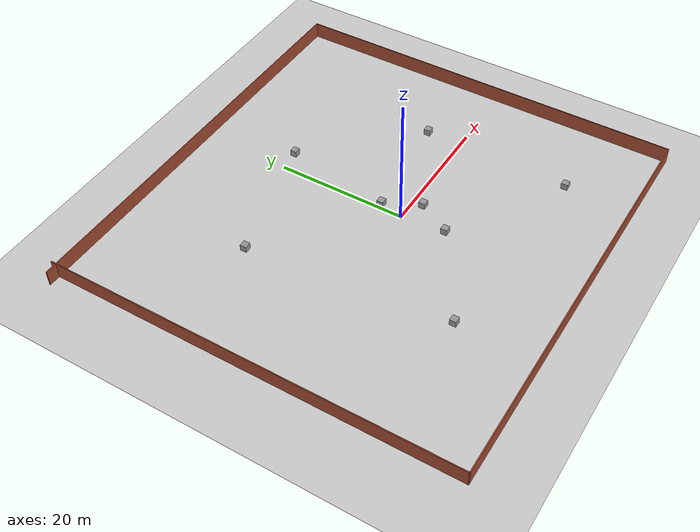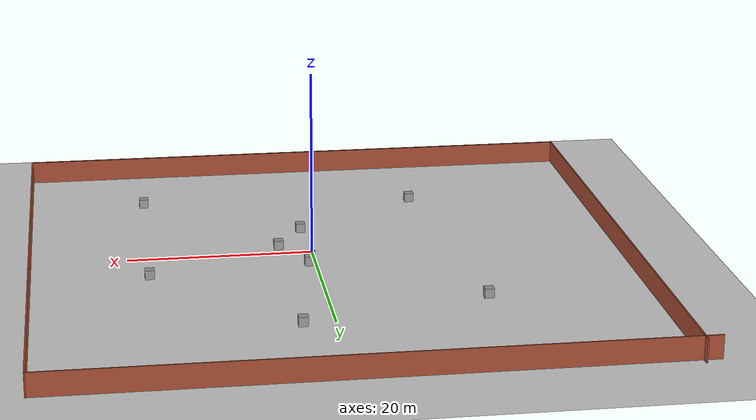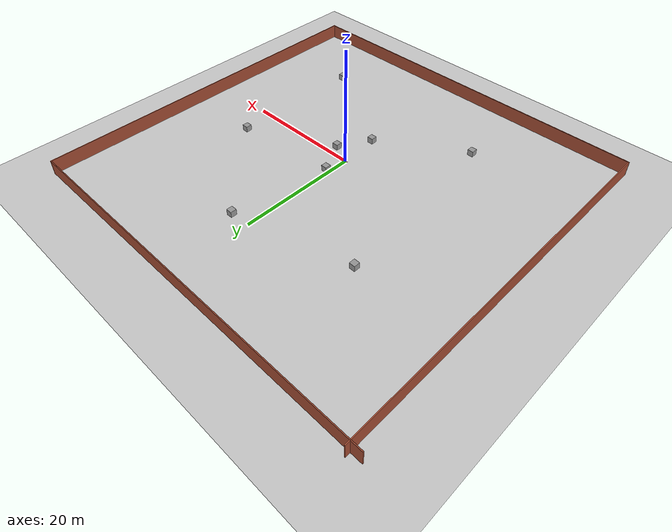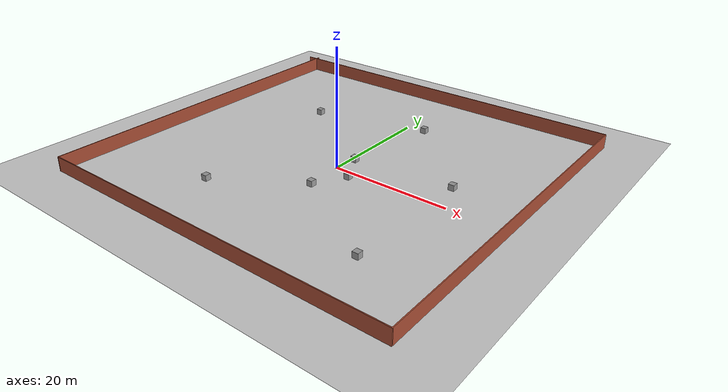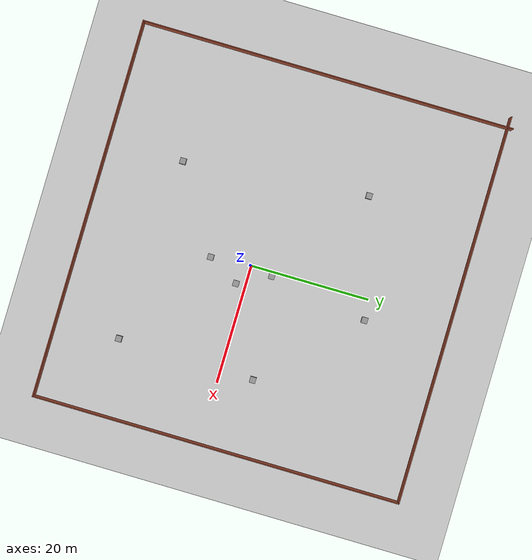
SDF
<sdf version="1.6">
 <world name="default">
  <light name="sun" type="directional">
   <pose>0 0 10 0 -0 0</pose>
   <diffuse>0.8 0.8 0.8 1</diffuse>
   <specular>0.1 0.1 0.1 1</specular>
   <attenuation>
    <range>1000</range>
    <constant>0.9</constant>
    <linear>0.01</linear>
    <quadratic>0.001</quadratic>
   </attenuation>
   <direction>-0.5 0.5 -1</direction>
  </light>
  <model name="ground_plane">
   <static>1</static>
   <link name="link">
    <collision name="collision">
     <geometry><plane><normal>0 0 1</normal><size>100 100</size></plane></geometry>
     <surface><friction><ode><mu>100</mu><mu2>50</mu2></ode></friction></surface>
    </collision>
    <visual name="visual">
     <cast_shadows>0</cast_shadows>
     <geometry><plane><normal>0 0 1</normal><size>100 100</size></plane></geometry>
     <material>
      <script><uri>file://media/materials/scripts/gazebo.material</uri><name>Gazebo/Grey</name></script>
     </material>
    </visual>
   </link>
  </model>
  <gravity>0 0 -9.8</gravity>
  <magnetic_field>6e-06 2.3e-05 -4.2e-05</magnetic_field>
  <atmosphere type="adiabatic"/>
  <physics name="default_physics" default="0" type="ode">
   <max_step_size>0.001</max_step_size>
   <real_time_factor>1</real_time_factor>
   <real_time_update_rate>1000</real_time_update_rate>
  </physics>
  <scene><ambient>0.4 0.4 0.4 1</ambient><background>0.7 0.7 0.7 1</background><shadows>1</shadows></scene>
  <spherical_coordinates>
   <surface_model>EARTH_WGS84</surface_model>
   <latitude_deg>0</latitude_deg>
   <longitude_deg>0</longitude_deg>
   <elevation>0</elevation>
   <heading_deg>0</heading_deg>
  </spherical_coordinates>
  <model name="robot">
   <link name="link_chassis">
    <inertial>
     <pose>0.025 0 0.091667 0 -0 0</pose>
     <mass>6</mass>
     <inertia>
      <ixx>0.0423542</ixx>
      <ixy>0</ixy>
      <ixz>0.00625</ixz>
      <iyy>0.127771</iyy>
      <iyz>0</iyz>
      <izz>0.125583</izz>
     </inertia>
    </inertial>
    <collision name="link_chassis_fixed_joint_lump__collision_chassis_collision">
     <geometry><box><size>0.5 0.3 0.07</size></box></geometry>
    </collision>
    <collision name="link_chassis_fixed_joint_lump__caster_front_collision_collision_1">
     <pose>0.35 0 -0.05 0 -0 0</pose>
     <geometry><sphere><radius>0.05</radius></sphere></geometry>
    </collision>
    <collision name="link_chassis_fixed_joint_lump__sensor_laser_collision_2">
     <pose>0.15 0 0.05 0 -0 0</pose>
     <geometry><cylinder><length>0.1</length><radius>0.05</radius></cylinder></geometry>
    </collision>
    <visual name="link_chassis_visual">
     <geometry><box><size>0.5 0.3 0.07</size></box></geometry>
     <material>
      <script><name>Gazebo/Red</name><uri>file://media/materials/scripts/gazebo.material</uri></script>
     </material>
    </visual>
    <visual name="link_chassis_fixed_joint_lump__caster_front_visual_visual_1">
     <pose>0.2 0 -0.05 0 -0 0</pose>
     <geometry><sphere><radius>0.05</radius></sphere></geometry>
    </visual>
    <visual name="link_chassis_fixed_joint_lump__sensor_laser_visual_2">
     <pose>0.15 0 0.05 0 -0 0</pose>
     <geometry><cylinder><length>0.1</length><radius>0.05</radius></cylinder></geometry>
     <material><script><uri>__default__</uri><name>__default__</name></script></material>
    </visual>
    <sensor name="head_hokuyo_sensor" type="ray">
     <visualize>0</visualize>
     <update_rate>20</update_rate>
     <ray>
      <scan>
       <horizontal>
        <samples>720</samples>
        <resolution>1</resolution>
        <min_angle>-1.5708</min_angle>
        <max_angle>1.5708</max_angle>
       </horizontal>
       <vertical><samples>1</samples><min_angle>0</min_angle><max_angle>0</max_angle></vertical>
      </scan>
      <range><min>0.1</min><max>10</max><resolution>0.01</resolution></range>
      <noise><type>gaussian</type><mean>0</mean><stddev>0.01</stddev></noise>
     </ray>
     <plugin name="gazebo_ros_head_hokuyo_controller" filename="libgazebo_ros_laser.so">
      <topicName>/mapBot/laser/scan</topicName>
      <frameName>sensor_laser</frameName>
      <robotNamespace>/</robotNamespace>
     </plugin>
     <pose>0.15 0 0.05 0 -0 0</pose>
    </sensor>
   </link>
   <link name="link_left_wheel">
    <pose>-0.05 -0.15 0 0 -0 0</pose>
    <inertial>
     <pose>0 0 0 -0 1.5707 1.5707</pose>
     <mass>0.2</mass>
     <inertia>
      <ixx>0.000526667</ixx>
      <ixy>0</ixy>
      <ixz>0</ixz>
      <iyy>0.000526667</iyy>
      <iyz>0</iyz>
      <izz>0.001</izz>
     </inertia>
    </inertial>
    <collision name="link_left_wheel_fixed_joint_lump__link_right_wheel_collision_collision">
     <pose>0 0 0 3.14159 1.57079 -1.57089</pose>
     <geometry><cylinder><length>0.04</length><radius>0.1</radius></cylinder></geometry>
    </collision>
    <visual name="link_left_wheel_visual_visual">
     <pose>0 0 0 3.14159 1.57079 -1.57089</pose>
     <geometry><cylinder><length>0.04</length><radius>0.1</radius></cylinder></geometry>
     <material>
      <script><name>Gazebo/Black</name><uri>file://media/materials/scripts/gazebo.material</uri></script>
     </material>
    </visual>
   </link>
   <joint name="joint_left_wheel" type="revolute">
    <child>link_left_wheel</child>
    <parent>link_chassis</parent>
    <axis>
     <xyz>0 1 0</xyz>
     <limit><lower>-1e+16</lower><upper>1e+16</upper></limit>
     <dynamics><spring_reference>0</spring_reference><spring_stiffness>0</spring_stiffness></dynamics>
     <use_parent_model_frame>1</use_parent_model_frame>
    </axis>
   </joint>
   <link name="link_right_wheel">
    <pose>-0.05 0.15 0 0 -0 0</pose>
    <inertial>
     <pose>0 0 0 -0 1.5707 1.5707</pose>
     <mass>0.2</mass>
     <inertia>
      <ixx>0.000526667</ixx>
      <ixy>0</ixy>
      <ixz>0</ixz>
      <iyy>0.000526667</iyy>
      <iyz>0</iyz>
      <izz>0.001</izz>
     </inertia>
    </inertial>
    <collision name="link_right_wheel_collision_collision">
     <pose>0 0 0 3.14159 1.57079 -1.57089</pose>
     <geometry><cylinder><length>0.04</length><radius>0.1</radius></cylinder></geometry>
    </collision>
    <visual name="link_right_wheel_visual_visual">
     <pose>0 0 0 3.14159 1.57079 -1.57089</pose>
     <geometry><cylinder><length>0.04</length><radius>0.1</radius></cylinder></geometry>
     <material>
      <script><name>Gazebo/Black</name><uri>file://media/materials/scripts/gazebo.material</uri></script>
     </material>
    </visual>
   </link>
   <joint name="joint_right_wheel" type="revolute">
    <child>link_right_wheel</child>
    <parent>link_chassis</parent>
    <axis>
     <xyz>0 1 0</xyz>
     <limit><lower>-1e+16</lower><upper>1e+16</upper></limit>
     <dynamics><spring_reference>0</spring_reference><spring_stiffness>0</spring_stiffness></dynamics>
     <use_parent_model_frame>1</use_parent_model_frame>
    </axis>
   </joint>
   <static>0</static>
   <plugin name="differential_drive_controller" filename="libgazebo_ros_diff_drive.so">
    <alwaysOn>true</alwaysOn>
    <updateRate>20</updateRate>
    <leftJoint>joint_left_wheel</leftJoint>
    <rightJoint>joint_right_wheel</rightJoint>
    <wheelSeparation>0.4</wheelSeparation>
    <wheelDiameter>0.2</wheelDiameter>
    <torque>0.1</torque>
    <commandTopic>cmd_vel</commandTopic>
    <odometryTopic>odom</odometryTopic>
    <odometryFrame>odom</odometryFrame>
    <robotBaseFrame>link_chassis</robotBaseFrame>
    <robotNamespace>/</robotNamespace>
   </plugin>
   <pose>-0.094305 0.000807 0.1 -8e-06 1e-06 0.006618</pose>
  </model>
  <model name="test.world">
   <pose>-2.37461 3.24477 0 0 -0 0</pose>
   <link name="Wall_0">
    <collision name="Wall_0_Collision">
     <geometry><box><size>65.5 0.15 2.5</size></box></geometry>
     <pose>0 0 1.25 0 -0 0</pose>
    </collision>
    <visual name="Wall_0_Visual">
     <pose>0 0 1.25 0 -0 0</pose>
     <geometry><box><size>65.5 0.15 2.5</size></box></geometry>
     <material>
      <script><uri>file://media/materials/scripts/gazebo.material</uri><name>Gazebo/Bricks</name></script>
      <ambient>1 1 1 1</ambient>
     </material>
    </visual>
    <pose>-1e-06 30.55 0 0 -0 0</pose>
   </link>
   <link name="Wall_1">
    <collision name="Wall_1_Collision">
     <geometry><box><size>62 0.15 2.5</size></box></geometry>
     <pose>0 0 1.25 0 -0 0</pose>
    </collision>
    <visual name="Wall_1_Visual">
     <pose>0 0 1.25 0 -0 0</pose>
     <geometry><box><size>62 0.15 2.5</size></box></geometry>
     <material>
      <script><uri>file://media/materials/scripts/gazebo.material</uri><name>Gazebo/Bricks</name></script>
      <ambient>1 1 1 1</ambient>
     </material>
    </visual>
    <pose>32.675 -0.375 0 0 0 -1.5708</pose>
   </link>
   <link name="Wall_2">
    <collision name="Wall_2_Collision">
     <geometry><box><size>63.75 0.15 2.5</size></box></geometry>
     <pose>0 0 1.25 0 -0 0</pose>
    </collision>
    <visual name="Wall_2_Visual">
     <pose>0 0 1.25 0 -0 0</pose>
     <geometry><box><size>63.75 0.15 2.5</size></box></geometry>
     <material>
      <script><uri>file://media/materials/scripts/gazebo.material</uri><name>Gazebo/Bricks</name></script>
      <ambient>1 1 1 1</ambient>
     </material>
    </visual>
    <pose>0.874999 -31.3 0 0 -0 3.14159</pose>
   </link>
   <link name="Wall_3">
    <collision name="Wall_3_Collision">
     <geometry><box><size>62.75 0.15 2.5</size></box></geometry>
     <pose>0 0 1.25 0 -0 0</pose>
    </collision>
    <visual name="Wall_3_Visual">
     <pose>0 0 1.25 0 -0 0</pose>
     <geometry><box><size>62.75 0.15 2.5</size></box></geometry>
     <material>
      <script><uri>file://media/materials/scripts/gazebo.material</uri><name>Gazebo/Bricks</name></script>
      <ambient>1 1 1 1</ambient>
     </material>
    </visual>
    <pose>-30.925 0 0 0 -0 1.5708</pose>
   </link>
   <static>1</static>
  </model>
  <model name="unit_box_0">
   <pose>-13.28 -15.5715 0.499995 -1e-05 0 0</pose>
   <link name="link">
    <inertial>
     <mass>1</mass>
     <inertia>
      <ixx>0.166667</ixx>
      <ixy>0</ixy>
      <ixz>0</ixz>
      <iyy>0.166667</iyy>
      <iyz>0</iyz>
      <izz>0.166667</izz>
     </inertia>
    </inertial>
    <collision name="collision"><geometry><box><size>1 1 1</size></box></geometry></collision>
    <visual name="visual">
     <geometry><box><size>1 1 1</size></box></geometry>
     <material>
      <script><name>Gazebo/Grey</name><uri>file://media/materials/scripts/gazebo.material</uri></script>
     </material>
    </visual>
   </link>
  </model>
  <model name="unit_box_1">
   <pose>0.508083 -6.79665 0.499995 0 1e-05 0</pose>
   <link name="link">
    <inertial>
     <mass>1</mass>
     <inertia>
      <ixx>0.166667</ixx>
      <ixy>0</ixy>
      <ixz>0</ixz>
      <iyy>0.166667</iyy>
      <iyz>0</iyz>
      <izz>0.166667</izz>
     </inertia>
    </inertial>
    <collision name="collision"><geometry><box><size>1 1 1</size></box></geometry></collision>
    <visual name="visual">
     <geometry><box><size>1 1 1</size></box></geometry>
     <material>
      <script><name>Gazebo/Grey</name><uri>file://media/materials/scripts/gazebo.material</uri></script>
     </material>
    </visual>
   </link>
  </model>
  <model name="unit_box_2">
   <pose>-16.3803 15.2687 0.499995 -1e-05 0 0</pose>
   <link name="link">
    <inertial>
     <mass>1</mass>
     <inertia>
      <ixx>0.166667</ixx>
      <ixy>0</ixy>
      <ixz>0</ixz>
      <iyy>0.166667</iyy>
      <iyz>0</iyz>
      <izz>0.166667</izz>
     </inertia>
    </inertial>
    <collision name="collision"><geometry><box><size>1 1 1</size></box></geometry></collision>
    <visual name="visual">
     <geometry><box><size>1 1 1</size></box></geometry>
     <material>
      <script><name>Gazebo/Grey</name><uri>file://media/materials/scripts/gazebo.material</uri></script>
     </material>
    </visual>
   </link>
  </model>
  <model name="unit_box_3">
   <pose>3.49098 -1.62148 0.499995 0 1e-05 0</pose>
   <link name="link">
    <inertial>
     <mass>1</mass>
     <inertia>
      <ixx>0.166667</ixx>
      <ixy>0</ixy>
      <ixz>0</ixz>
      <iyy>0.166667</iyy>
      <iyz>0</iyz>
      <izz>0.166667</izz>
     </inertia>
    </inertial>
    <collision name="collision"><geometry><box><size>1 1 1</size></box></geometry></collision>
    <visual name="visual">
     <geometry><box><size>1 1 1</size></box></geometry>
     <material>
      <script><name>Gazebo/Grey</name><uri>file://media/materials/scripts/gazebo.material</uri></script>
     </material>
    </visual>
   </link>
  </model>
  <model name="unit_box_4">
   <pose>17.5264 -17.4528 0.499995 -1e-05 0 0</pose>
   <link name="link">
    <inertial>
     <mass>1</mass>
     <inertia>
      <ixx>0.166667</ixx>
      <ixy>0</ixy>
      <ixz>0</ixz>
      <iyy>0.166667</iyy>
      <iyz>0</iyz>
      <izz>0.166667</izz>
     </inertia>
    </inertial>
    <collision name="collision"><geometry><box><size>1 1 1</size></box></geometry></collision>
    <visual name="visual">
     <geometry><box><size>1 1 1</size></box></geometry>
     <material>
      <script><name>Gazebo/Grey</name><uri>file://media/materials/scripts/gazebo.material</uri></script>
     </material>
    </visual>
   </link>
  </model>
  <model name="unit_box_5">
   <pose>0.719884 3.67186 0.499995 0 1e-05 0</pose>
   <link name="link">
    <inertial>
     <mass>1</mass>
     <inertia>
      <ixx>0.166667</ixx>
      <ixy>0</ixy>
      <ixz>0</ixz>
      <iyy>0.166667</iyy>
      <iyz>0</iyz>
      <izz>0.166667</izz>
     </inertia>
    </inertial>
    <collision name="collision"><geometry><box><size>1 1 1</size></box></geometry></collision>
    <visual name="visual">
     <geometry><box><size>1 1 1</size></box></geometry>
     <material>
      <script><name>Gazebo/Grey</name><uri>file://media/materials/scripts/gazebo.material</uri></script>
     </material>
    </visual>
   </link>
  </model>
  <model name="unit_box_6">
   <pose>3.34871 20.2492 0.499995 -1e-05 0 0</pose>
   <link name="link">
    <inertial>
     <mass>1</mass>
     <inertia>
      <ixx>0.166667</ixx>
      <ixy>0</ixy>
      <ixz>0</ixz>
      <iyy>0.166667</iyy>
      <iyz>0</iyz>
      <izz>0.166667</izz>
     </inertia>
    </inertial>
    <collision name="collision"><geometry><box><size>1 1 1</size></box></geometry></collision>
    <visual name="visual">
     <geometry><box><size>1 1 1</size></box></geometry>
     <material>
      <script><name>Gazebo/Grey</name><uri>file://media/materials/scripts/gazebo.material</uri></script>
     </material>
    </visual>
   </link>
  </model>
  <model name="unit_box_7">
   <pose>17.8322 5.46315 0.5 0 -0 0</pose>
   <link name="link">
    <inertial>
     <mass>1</mass>
     <inertia>
      <ixx>0.166667</ixx>
      <ixy>0</ixy>
      <ixz>0</ixz>
      <iyy>0.166667</iyy>
      <iyz>0</iyz>
      <izz>0.166667</izz>
     </inertia>
    </inertial>
    <collision name="collision"><geometry><box><size>1 1 1</size></box></geometry></collision>
    <visual name="visual">
     <geometry><box><size>1 1 1</size></box></geometry>
     <material>
      <script><name>Gazebo/Grey</name><uri>file://media/materials/scripts/gazebo.material</uri></script>
     </material>
    </visual>
   </link>
  </model>
 </world>
</sdf>
